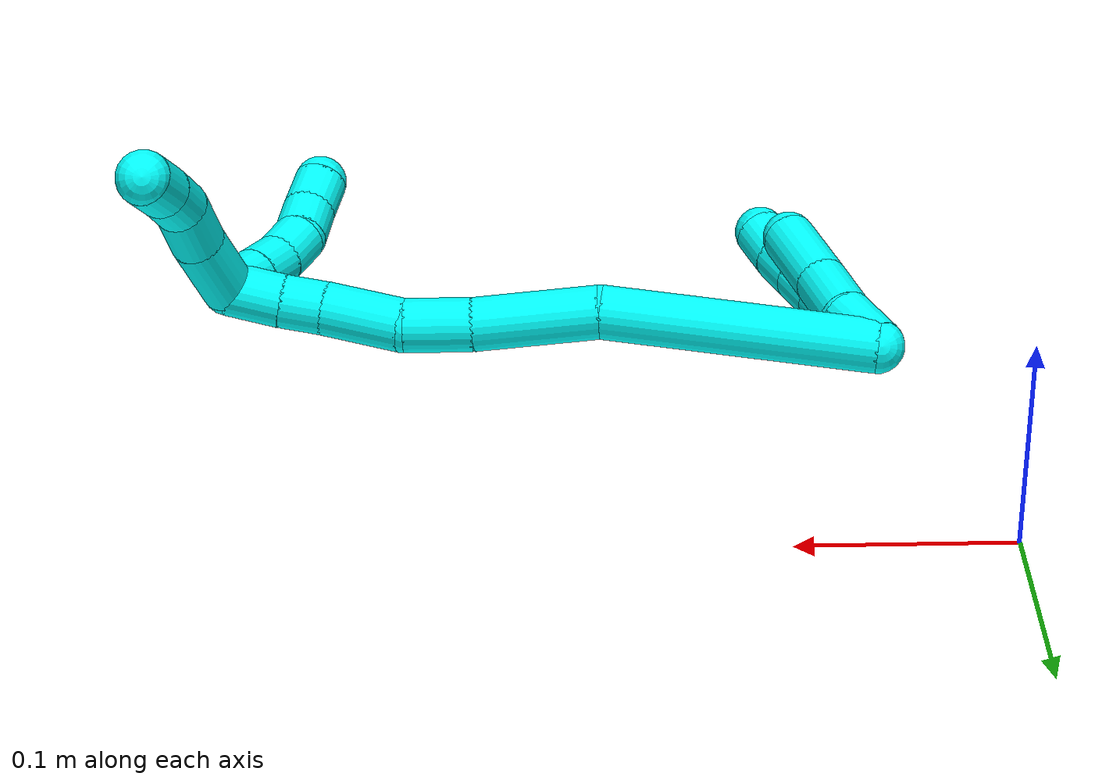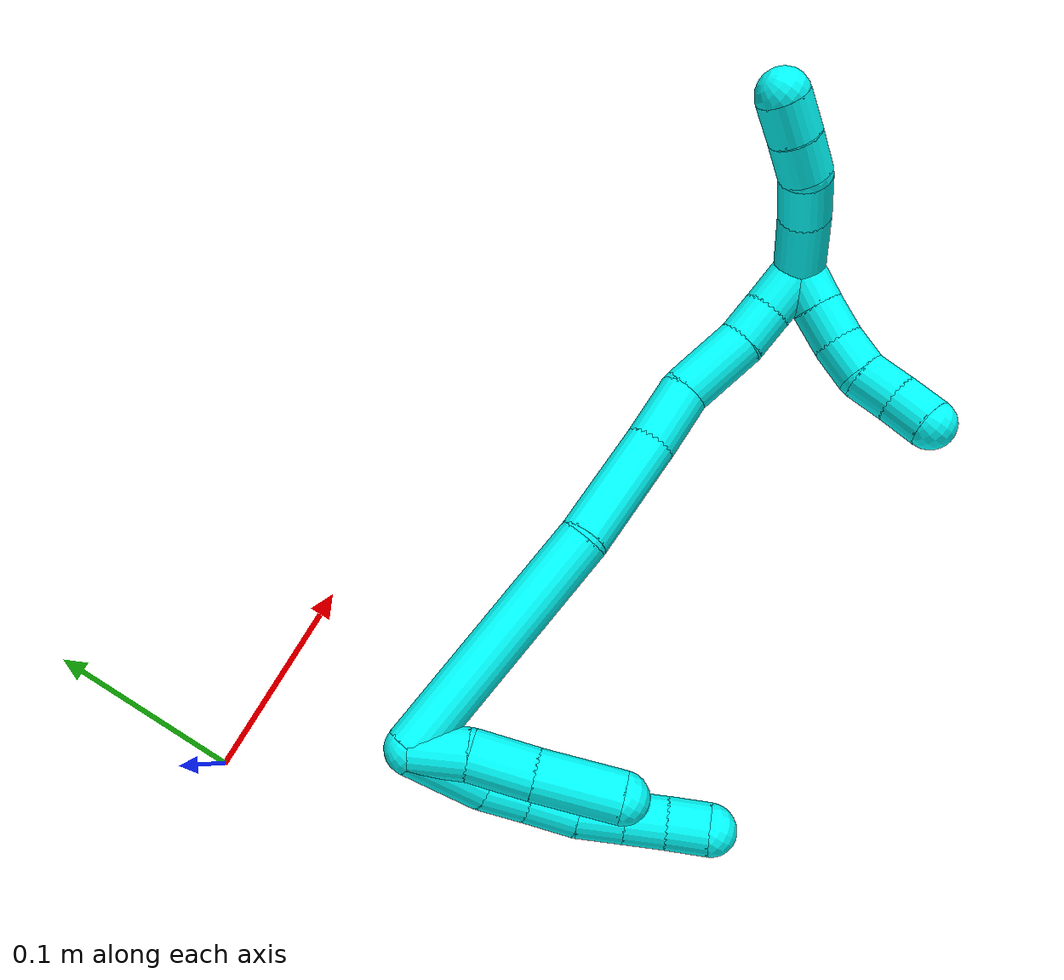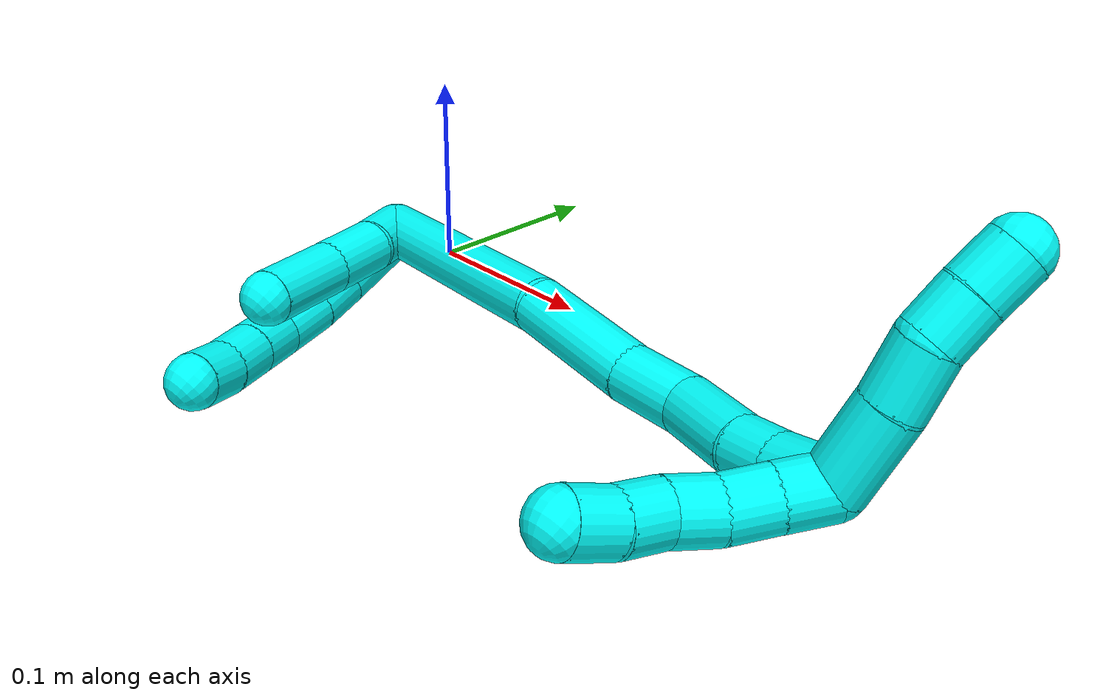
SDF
<sdf version="1.7">
 <world name="default">
  <model name="3">
   <static>0</static>
   <link name="3">
    <collision name="collision-cylinder-e_1_2_8">
     <pose>-0.000813 -0.002277 -0.020034 3.02841 -0.040277 -0.683167</pose>
     <geometry><cylinder><radius>0.0125</radius><length>0.040358</length></cylinder></geometry>
     <surface>
      <friction><ode><mu>1.16</mu><mu2>1.16</mu2><slip1>0</slip1><slip2>0</slip2></ode></friction>
      <contact><ode><kp>1e+06</kp><kd>1</kd><max_vel>0</max_vel><min_depth>0.001</min_depth></ode></contact>
     </surface>
    </collision>
    <visual name="visual-cylinder-e_1_2_8">
     <pose>-0.000813 -0.002277 -0.020034 3.02841 -0.040277 -0.683167</pose>
     <geometry><cylinder><radius>0.0125</radius><length>0.040358</length></cylinder></geometry>
     <material><ambient>0.003922 1 0.996078 1</ambient></material>
    </visual>
    <collision name="collision-cylinder-e_2_8_9">
     <pose>-0.001978 -0.008486 -0.050464 2.78004 -0.031706 -0.173052</pose>
     <geometry><cylinder><radius>0.0125</radius><length>0.022242</length></cylinder></geometry>
     <surface>
      <friction><ode><mu>1.16</mu><mu2>1.16</mu2><slip1>0</slip1><slip2>0</slip2></ode></friction>
      <contact><ode><kp>1e+06</kp><kd>1</kd><max_vel>0</max_vel><min_depth>0.001</min_depth></ode></contact>
     </surface>
    </collision>
    <visual name="visual-cylinder-e_2_8_9">
     <pose>-0.001978 -0.008486 -0.050464 2.78004 -0.031706 -0.173052</pose>
     <geometry><cylinder><radius>0.0125</radius><length>0.022242</length></cylinder></geometry>
     <material><ambient>0.003922 1 0.996078 1</ambient></material>
    </visual>
    <collision name="collision-cylinder-e_3_9_10">
     <pose>-0.003651 -0.017693 -0.072028 2.7003 -0.106576 -0.466935</pose>
     <geometry><cylinder><radius>0.0125</radius><length>0.024841</length></cylinder></geometry>
     <surface>
      <friction><ode><mu>1.16</mu><mu2>1.16</mu2><slip1>0</slip1><slip2>0</slip2></ode></friction>
      <contact><ode><kp>1e+06</kp><kd>1</kd><max_vel>0</max_vel><min_depth>0.001</min_depth></ode></contact>
     </surface>
    </collision>
    <visual name="visual-cylinder-e_3_9_10">
     <pose>-0.003651 -0.017693 -0.072028 2.7003 -0.106576 -0.466935</pose>
     <geometry><cylinder><radius>0.0125</radius><length>0.024841</length></cylinder></geometry>
     <material><ambient>0.003922 1 0.996078 1</ambient></material>
    </visual>
    <collision name="collision-cylinder-e_4_10_11">
     <pose>-0.005686 -0.029761 -0.091878 2.47772 -0.064641 -0.187054</pose>
     <geometry><cylinder><radius>0.0125</radius><length>0.022095</length></cylinder></geometry>
     <surface>
      <friction><ode><mu>1.16</mu><mu2>1.16</mu2><slip1>0</slip1><slip2>0</slip2></ode></friction>
      <contact><ode><kp>1e+06</kp><kd>1</kd><max_vel>0</max_vel><min_depth>0.001</min_depth></ode></contact>
     </surface>
    </collision>
    <visual name="visual-cylinder-e_4_10_11">
     <pose>-0.005686 -0.029761 -0.091878 2.47772 -0.064641 -0.187054</pose>
     <geometry><cylinder><radius>0.0125</radius><length>0.022095</length></cylinder></geometry>
     <material><ambient>0.003922 1 0.996078 1</ambient></material>
    </visual>
    <collision name="collision-cylinder-e_5_11_12">
     <pose>-0.007047 -0.042751 -0.10853 2.48063 -0.063994 -0.186064</pose>
     <geometry><cylinder><radius>0.0125</radius><length>0.020231</length></cylinder></geometry>
     <surface>
      <friction><ode><mu>1.16</mu><mu2>1.16</mu2><slip1>0</slip1><slip2>0</slip2></ode></friction>
      <contact><ode><kp>1e+06</kp><kd>1</kd><max_vel>0</max_vel><min_depth>0.001</min_depth></ode></contact>
     </surface>
    </collision>
    <visual name="visual-cylinder-e_5_11_12">
     <pose>-0.007047 -0.042751 -0.10853 2.48063 -0.063994 -0.186064</pose>
     <geometry><cylinder><radius>0.0125</radius><length>0.020231</length></cylinder></geometry>
     <material><ambient>0.003922 1 0.996078 1</ambient></material>
    </visual>
    <collision name="collision-cylinder-e_6_12_6">
     <pose>-0.00924 -0.05582 -0.123759 2.38361 -0.153485 -0.381471</pose>
     <geometry><cylinder><radius>0.0125</radius><length>0.020232</length></cylinder></geometry>
     <surface>
      <friction><ode><mu>1.16</mu><mu2>1.16</mu2><slip1>0</slip1><slip2>0</slip2></ode></friction>
      <contact><ode><kp>1e+06</kp><kd>1</kd><max_vel>0</max_vel><min_depth>0.001</min_depth></ode></contact>
     </surface>
    </collision>
    <visual name="visual-cylinder-e_6_12_6">
     <pose>-0.00924 -0.05582 -0.123759 2.38361 -0.153485 -0.381471</pose>
     <geometry><cylinder><radius>0.0125</radius><length>0.020232</length></cylinder></geometry>
     <material><ambient>0.003922 1 0.996078 1</ambient></material>
    </visual>
    <collision name="collision-cylinder-e_1_2_13">
     <pose>-0.000728 -0.008754 -0.0106 2.45125 -0.05292 -0.146947</pose>
     <geometry><cylinder><radius>0.0125</radius><length>0.027533</length></cylinder></geometry>
     <surface>
      <friction><ode><mu>1.16</mu><mu2>1.16</mu2><slip1>0</slip1><slip2>0</slip2></ode></friction>
      <contact><ode><kp>1e+06</kp><kd>1</kd><max_vel>0</max_vel><min_depth>0.001</min_depth></ode></contact>
     </surface>
    </collision>
    <visual name="visual-cylinder-e_1_2_13">
     <pose>-0.000728 -0.008754 -0.0106 2.45125 -0.05292 -0.146947</pose>
     <geometry><cylinder><radius>0.0125</radius><length>0.027533</length></cylinder></geometry>
     <material><ambient>0.003922 1 0.996078 1</ambient></material>
    </visual>
    <collision name="collision-cylinder-e_2_13_14">
     <pose>-0.004161 -0.025304 -0.034446 2.60974 -0.174167 -0.620358</pose>
     <geometry><cylinder><radius>0.0125</radius><length>0.031213</length></cylinder></geometry>
     <surface>
      <friction><ode><mu>1.16</mu><mu2>1.16</mu2><slip1>0</slip1><slip2>0</slip2></ode></friction>
      <contact><ode><kp>1e+06</kp><kd>1</kd><max_vel>0</max_vel><min_depth>0.001</min_depth></ode></contact>
     </surface>
    </collision>
    <visual name="visual-cylinder-e_2_13_14">
     <pose>-0.004161 -0.025304 -0.034446 2.60974 -0.174167 -0.620358</pose>
     <geometry><cylinder><radius>0.0125</radius><length>0.031213</length></cylinder></geometry>
     <material><ambient>0.003922 1 0.996078 1</ambient></material>
    </visual>
    <collision name="collision-cylinder-e_3_14_5">
     <pose>-0.010288 -0.044346 -0.064642 2.55568 -0.166721 -0.540456</pose>
     <geometry><cylinder><radius>0.0125</radius><length>0.041254</length></cylinder></geometry>
     <surface>
      <friction><ode><mu>1.16</mu><mu2>1.16</mu2><slip1>0</slip1><slip2>0</slip2></ode></friction>
      <contact><ode><kp>1e+06</kp><kd>1</kd><max_vel>0</max_vel><min_depth>0.001</min_depth></ode></contact>
     </surface>
    </collision>
    <visual name="visual-cylinder-e_3_14_5">
     <pose>-0.010288 -0.044346 -0.064642 2.55568 -0.166721 -0.540456</pose>
     <geometry><cylinder><radius>0.0125</radius><length>0.041254</length></cylinder></geometry>
     <material><ambient>0.003922 1 0.996078 1</ambient></material>
    </visual>
    <collision name="collision-cylinder-e_1_2_15">
     <pose>0.039145 -0.048917 -0.008796 1.74871 0.667136 0.785689</pose>
     <geometry><cylinder><radius>0.0125</radius><length>0.126532</length></cylinder></geometry>
     <surface>
      <friction><ode><mu>1.16</mu><mu2>1.16</mu2><slip1>0</slip1><slip2>0</slip2></ode></friction>
      <contact><ode><kp>1e+06</kp><kd>1</kd><max_vel>0</max_vel><min_depth>0.001</min_depth></ode></contact>
     </surface>
    </collision>
    <visual name="visual-cylinder-e_1_2_15">
     <pose>0.039145 -0.048917 -0.008796 1.74871 0.667136 0.785689</pose>
     <geometry><cylinder><radius>0.0125</radius><length>0.126532</length></cylinder></geometry>
     <material><ambient>0.003922 1 0.996078 1</ambient></material>
    </visual>
    <collision name="collision-cylinder-e_2_15_16">
     <pose>0.100924 -0.115841 -0.02251 1.8374 0.881183 1.10643</pose>
     <geometry><cylinder><radius>0.0125</radius><length>0.058676</length></cylinder></geometry>
     <surface>
      <friction><ode><mu>1.16</mu><mu2>1.16</mu2><slip1>0</slip1><slip2>0</slip2></ode></friction>
      <contact><ode><kp>1e+06</kp><kd>1</kd><max_vel>0</max_vel><min_depth>0.001</min_depth></ode></contact>
     </surface>
    </collision>
    <visual name="visual-cylinder-e_2_15_16">
     <pose>0.100924 -0.115841 -0.02251 1.8374 0.881183 1.10643</pose>
     <geometry><cylinder><radius>0.0125</radius><length>0.058676</length></cylinder></geometry>
     <material><ambient>0.003922 1 0.996078 1</ambient></material>
    </visual>
    <collision name="collision-cylinder-e_3_16_17">
     <pose>0.13509 -0.144738 -0.028849 1.70059 0.809766 0.908219</pose>
     <geometry><cylinder><radius>0.0125</radius><length>0.031849</length></cylinder></geometry>
     <surface>
      <friction><ode><mu>1.16</mu><mu2>1.16</mu2><slip1>0</slip1><slip2>0</slip2></ode></friction>
      <contact><ode><kp>1e+06</kp><kd>1</kd><max_vel>0</max_vel><min_depth>0.001</min_depth></ode></contact>
     </surface>
    </collision>
    <visual name="visual-cylinder-e_3_16_17">
     <pose>0.13509 -0.144738 -0.028849 1.70059 0.809766 0.908219</pose>
     <geometry><cylinder><radius>0.0125</radius><length>0.031849</length></cylinder></geometry>
     <material><ambient>0.003922 1 0.996078 1</ambient></material>
    </visual>
    <collision name="collision-cylinder-e_4_17_18">
     <pose>0.156615 -0.170746 -0.035292 1.8915 0.560264 0.7588</pose>
     <geometry><cylinder><radius>0.0125</radius><length>0.037609</length></cylinder></geometry>
     <surface>
      <friction><ode><mu>1.16</mu><mu2>1.16</mu2><slip1>0</slip1><slip2>0</slip2></ode></friction>
      <contact><ode><kp>1e+06</kp><kd>1</kd><max_vel>0</max_vel><min_depth>0.001</min_depth></ode></contact>
     </surface>
    </collision>
    <visual name="visual-cylinder-e_4_17_18">
     <pose>0.156615 -0.170746 -0.035292 1.8915 0.560264 0.7588</pose>
     <geometry><cylinder><radius>0.0125</radius><length>0.037609</length></cylinder></geometry>
     <material><ambient>0.003922 1 0.996078 1</ambient></material>
    </visual>
    <collision name="collision-cylinder-e_5_18_19">
     <pose>0.172499 -0.193984 -0.041432 1.70763 0.623184 0.70783</pose>
     <geometry><cylinder><radius>0.0125</radius><length>0.020189</length></cylinder></geometry>
     <surface>
      <friction><ode><mu>1.16</mu><mu2>1.16</mu2><slip1>0</slip1><slip2>0</slip2></ode></friction>
      <contact><ode><kp>1e+06</kp><kd>1</kd><max_vel>0</max_vel><min_depth>0.001</min_depth></ode></contact>
     </surface>
    </collision>
    <visual name="visual-cylinder-e_5_18_19">
     <pose>0.172499 -0.193984 -0.041432 1.70763 0.623184 0.70783</pose>
     <geometry><cylinder><radius>0.0125</radius><length>0.020189</length></cylinder></geometry>
     <material><ambient>0.003922 1 0.996078 1</ambient></material>
    </visual>
    <collision name="collision-cylinder-e_6_19_1">
     <pose>0.185131 -0.212681 -0.043415 1.65244 0.56587 0.611221</pose>
     <geometry><cylinder><radius>0.0125</radius><length>0.025144</length></cylinder></geometry>
     <surface>
      <friction><ode><mu>1.16</mu><mu2>1.16</mu2><slip1>0</slip1><slip2>0</slip2></ode></friction>
      <contact><ode><kp>1e+06</kp><kd>1</kd><max_vel>0</max_vel><min_depth>0.001</min_depth></ode></contact>
     </surface>
    </collision>
    <visual name="visual-cylinder-e_6_19_1">
     <pose>0.185131 -0.212681 -0.043415 1.65244 0.56587 0.611221</pose>
     <geometry><cylinder><radius>0.0125</radius><length>0.025144</length></cylinder></geometry>
     <material><ambient>0.003922 1 0.996078 1</ambient></material>
    </visual>
    <collision name="collision-cylinder-e_1_1_20">
     <pose>0.18563 -0.221585 -0.051913 -2.92579 -0.673983 2.54189</pose>
     <geometry><cylinder><radius>0.0125</radius><length>0.02</length></cylinder></geometry>
     <surface>
      <friction><ode><mu>1.16</mu><mu2>1.16</mu2><slip1>0</slip1><slip2>0</slip2></ode></friction>
      <contact><ode><kp>1e+06</kp><kd>1</kd><max_vel>0</max_vel><min_depth>0.001</min_depth></ode></contact>
     </surface>
    </collision>
    <visual name="visual-cylinder-e_1_1_20">
     <pose>0.18563 -0.221585 -0.051913 -2.92579 -0.673983 2.54189</pose>
     <geometry><cylinder><radius>0.0125</radius><length>0.02</length></cylinder></geometry>
     <material><ambient>0.003922 1 0.996078 1</ambient></material>
    </visual>
    <collision name="collision-cylinder-e_2_20_21">
     <pose>0.173198 -0.218679 -0.067301 -2.98393 -0.667587 2.69364</pose>
     <geometry><cylinder><radius>0.0125</radius><length>0.02</length></cylinder></geometry>
     <surface>
      <friction><ode><mu>1.16</mu><mu2>1.16</mu2><slip1>0</slip1><slip2>0</slip2></ode></friction>
      <contact><ode><kp>1e+06</kp><kd>1</kd><max_vel>0</max_vel><min_depth>0.001</min_depth></ode></contact>
     </surface>
    </collision>
    <visual name="visual-cylinder-e_2_20_21">
     <pose>0.173198 -0.218679 -0.067301 -2.98393 -0.667587 2.69364</pose>
     <geometry><cylinder><radius>0.0125</radius><length>0.02</length></cylinder></geometry>
     <material><ambient>0.003922 1 0.996078 1</ambient></material>
    </visual>
    <collision name="collision-cylinder-e_3_21_22">
     <pose>0.159677 -0.217773 -0.081851 3.09345 -0.822719 -3.03132</pose>
     <geometry><cylinder><radius>0.0125</radius><length>0.02</length></cylinder></geometry>
     <surface>
      <friction><ode><mu>1.16</mu><mu2>1.16</mu2><slip1>0</slip1><slip2>0</slip2></ode></friction>
      <contact><ode><kp>1e+06</kp><kd>1</kd><max_vel>0</max_vel><min_depth>0.001</min_depth></ode></contact>
     </surface>
    </collision>
    <visual name="visual-cylinder-e_3_21_22">
     <pose>0.159677 -0.217773 -0.081851 3.09345 -0.822719 -3.03132</pose>
     <geometry><cylinder><radius>0.0125</radius><length>0.02</length></cylinder></geometry>
     <material><ambient>0.003922 1 0.996078 1</ambient></material>
    </visual>
    <collision name="collision-cylinder-e_4_22_23">
     <pose>0.146583 -0.221103 -0.096245 2.76536 -0.614413 -2.06067</pose>
     <geometry><cylinder><radius>0.0125</radius><length>0.02</length></cylinder></geometry>
     <surface>
      <friction><ode><mu>1.16</mu><mu2>1.16</mu2><slip1>0</slip1><slip2>0</slip2></ode></friction>
      <contact><ode><kp>1e+06</kp><kd>1</kd><max_vel>0</max_vel><min_depth>0.001</min_depth></ode></contact>
     </surface>
    </collision>
    <visual name="visual-cylinder-e_4_22_23">
     <pose>0.146583 -0.221103 -0.096245 2.76536 -0.614413 -2.06067</pose>
     <geometry><cylinder><radius>0.0125</radius><length>0.02</length></cylinder></geometry>
     <material><ambient>0.003922 1 0.996078 1</ambient></material>
    </visual>
    <collision name="collision-cylinder-e_5_23_4">
     <pose>0.133797 -0.227266 -0.110226 2.68165 -0.778243 -2.10399</pose>
     <geometry><cylinder><radius>0.0125</radius><length>0.02</length></cylinder></geometry>
     <surface>
      <friction><ode><mu>1.16</mu><mu2>1.16</mu2><slip1>0</slip1><slip2>0</slip2></ode></friction>
      <contact><ode><kp>1e+06</kp><kd>1</kd><max_vel>0</max_vel><min_depth>0.001</min_depth></ode></contact>
     </surface>
    </collision>
    <visual name="visual-cylinder-e_5_23_4">
     <pose>0.133797 -0.227266 -0.110226 2.68165 -0.778243 -2.10399</pose>
     <geometry><cylinder><radius>0.0125</radius><length>0.02</length></cylinder></geometry>
     <material><ambient>0.003922 1 0.996078 1</ambient></material>
    </visual>
    <collision name="collision-cylinder-e_1_1_24">
     <pose>0.189065 -0.235365 -0.031859 0.772587 -0.160373 -0.065345</pose>
     <geometry><cylinder><radius>0.0125</radius><length>0.035143</length></cylinder></geometry>
     <surface>
      <friction><ode><mu>1.16</mu><mu2>1.16</mu2><slip1>0</slip1><slip2>0</slip2></ode></friction>
      <contact><ode><kp>1e+06</kp><kd>1</kd><max_vel>0</max_vel><min_depth>0.001</min_depth></ode></contact>
     </surface>
    </collision>
    <visual name="visual-cylinder-e_1_1_24">
     <pose>0.189065 -0.235365 -0.031859 0.772587 -0.160373 -0.065345</pose>
     <geometry><cylinder><radius>0.0125</radius><length>0.035143</length></cylinder></geometry>
     <material><ambient>0.003922 1 0.996078 1</ambient></material>
    </visual>
    <collision name="collision-cylinder-e_2_24_25">
     <pose>0.183295 -0.255256 -0.010279 0.704429 -0.241843 -0.089264</pose>
     <geometry><cylinder><radius>0.0125</radius><length>0.024758</length></cylinder></geometry>
     <surface>
      <friction><ode><mu>1.16</mu><mu2>1.16</mu2><slip1>0</slip1><slip2>0</slip2></ode></friction>
      <contact><ode><kp>1e+06</kp><kd>1</kd><max_vel>0</max_vel><min_depth>0.001</min_depth></ode></contact>
     </surface>
    </collision>
    <visual name="visual-cylinder-e_2_24_25">
     <pose>0.183295 -0.255256 -0.010279 0.704429 -0.241843 -0.089264</pose>
     <geometry><cylinder><radius>0.0125</radius><length>0.024758</length></cylinder></geometry>
     <material><ambient>0.003922 1 0.996078 1</ambient></material>
    </visual>
    <collision name="collision-cylinder-e_3_25_26">
     <pose>0.180428 -0.267752 0.007727 0.489414 0.009742 0.002433</pose>
     <geometry><cylinder><radius>0.0125</radius><length>0.020052</length></cylinder></geometry>
     <surface>
      <friction><ode><mu>1.16</mu><mu2>1.16</mu2><slip1>0</slip1><slip2>0</slip2></ode></friction>
      <contact><ode><kp>1e+06</kp><kd>1</kd><max_vel>0</max_vel><min_depth>0.001</min_depth></ode></contact>
     </surface>
    </collision>
    <visual name="visual-cylinder-e_3_25_26">
     <pose>0.180428 -0.267752 0.007727 0.489414 0.009742 0.002433</pose>
     <geometry><cylinder><radius>0.0125</radius><length>0.020052</length></cylinder></geometry>
     <material><ambient>0.003922 1 0.996078 1</ambient></material>
    </visual>
    <collision name="collision-cylinder-e_4_26_3">
     <pose>0.181253 -0.276913 0.025529 0.461122 0.072708 0.017074</pose>
     <geometry><cylinder><radius>0.0125</radius><length>0.020047</length></cylinder></geometry>
     <surface>
      <friction><ode><mu>1.16</mu><mu2>1.16</mu2><slip1>0</slip1><slip2>0</slip2></ode></friction>
      <contact><ode><kp>1e+06</kp><kd>1</kd><max_vel>0</max_vel><min_depth>0.001</min_depth></ode></contact>
     </surface>
    </collision>
    <visual name="visual-cylinder-e_4_26_3">
     <pose>0.181253 -0.276913 0.025529 0.461122 0.072708 0.017074</pose>
     <geometry><cylinder><radius>0.0125</radius><length>0.020047</length></cylinder></geometry>
     <material><ambient>0.003922 1 0.996078 1</ambient></material>
    </visual>
    <collision name="collision-sphere-3">
     <pose>0.181982 -0.281362 0.034482 0 -0 0</pose>
     <geometry><sphere><radius>0.0125</radius></sphere></geometry>
     <surface>
      <friction><ode><mu>1.16</mu><mu2>1.16</mu2><slip1>0</slip1><slip2>0</slip2></ode></friction>
      <contact><ode><kp>1e+06</kp><kd>1</kd><max_vel>0</max_vel><min_depth>0.001</min_depth></ode></contact>
     </surface>
    </collision>
    <visual name="visual-sphere-3">
     <pose>0.181982 -0.281362 0.034482 0 -0 0</pose>
     <geometry><sphere><radius>0.0125</radius></sphere></geometry>
     <material><ambient>0.003922 1 0.996078 1</ambient></material>
    </visual>
    <collision name="collision-sphere-26">
     <pose>0.180525 -0.272465 0.016576 0 -0 0</pose>
     <geometry><sphere><radius>0.0125</radius></sphere></geometry>
     <surface>
      <friction><ode><mu>1.16</mu><mu2>1.16</mu2><slip1>0</slip1><slip2>0</slip2></ode></friction>
      <contact><ode><kp>1e+06</kp><kd>1</kd><max_vel>0</max_vel><min_depth>0.001</min_depth></ode></contact>
     </surface>
    </collision>
    <visual name="visual-sphere-26">
     <pose>0.180525 -0.272465 0.016576 0 -0 0</pose>
     <geometry><sphere><radius>0.0125</radius></sphere></geometry>
     <material><ambient>0.003922 1 0.996078 1</ambient></material>
    </visual>
    <collision name="collision-sphere-25">
     <pose>0.18033 -0.263039 -0.001121 0 -0 0</pose>
     <geometry><sphere><radius>0.0125</radius></sphere></geometry>
     <surface>
      <friction><ode><mu>1.16</mu><mu2>1.16</mu2><slip1>0</slip1><slip2>0</slip2></ode></friction>
      <contact><ode><kp>1e+06</kp><kd>1</kd><max_vel>0</max_vel><min_depth>0.001</min_depth></ode></contact>
     </surface>
    </collision>
    <visual name="visual-sphere-25">
     <pose>0.18033 -0.263039 -0.001121 0 -0 0</pose>
     <geometry><sphere><radius>0.0125</radius></sphere></geometry>
     <material><ambient>0.003922 1 0.996078 1</ambient></material>
    </visual>
    <collision name="collision-sphere-24">
     <pose>0.186259 -0.247472 -0.019438 0 -0 0</pose>
     <geometry><sphere><radius>0.0125</radius></sphere></geometry>
     <surface>
      <friction><ode><mu>1.16</mu><mu2>1.16</mu2><slip1>0</slip1><slip2>0</slip2></ode></friction>
      <contact><ode><kp>1e+06</kp><kd>1</kd><max_vel>0</max_vel><min_depth>0.001</min_depth></ode></contact>
     </surface>
    </collision>
    <visual name="visual-sphere-24">
     <pose>0.186259 -0.247472 -0.019438 0 -0 0</pose>
     <geometry><sphere><radius>0.0125</radius></sphere></geometry>
     <material><ambient>0.003922 1 0.996078 1</ambient></material>
    </visual>
    <collision name="collision-sphere-4">
     <pose>0.126777 -0.230427 -0.116607 0 -0 0</pose>
     <geometry><sphere><radius>0.0125</radius></sphere></geometry>
     <surface>
      <friction><ode><mu>1.16</mu><mu2>1.16</mu2><slip1>0</slip1><slip2>0</slip2></ode></friction>
      <contact><ode><kp>1e+06</kp><kd>1</kd><max_vel>0</max_vel><min_depth>0.001</min_depth></ode></contact>
     </surface>
    </collision>
    <visual name="visual-sphere-4">
     <pose>0.126777 -0.230427 -0.116607 0 -0 0</pose>
     <geometry><sphere><radius>0.0125</radius></sphere></geometry>
     <material><ambient>0.003922 1 0.996078 1</ambient></material>
    </visual>
    <collision name="collision-sphere-23">
     <pose>0.140818 -0.224105 -0.103845 0 -0 0</pose>
     <geometry><sphere><radius>0.0125</radius></sphere></geometry>
     <surface>
      <friction><ode><mu>1.16</mu><mu2>1.16</mu2><slip1>0</slip1><slip2>0</slip2></ode></friction>
      <contact><ode><kp>1e+06</kp><kd>1</kd><max_vel>0</max_vel><min_depth>0.001</min_depth></ode></contact>
     </surface>
    </collision>
    <visual name="visual-sphere-23">
     <pose>0.140818 -0.224105 -0.103845 0 -0 0</pose>
     <geometry><sphere><radius>0.0125</radius></sphere></geometry>
     <material><ambient>0.003922 1 0.996078 1</ambient></material>
    </visual>
    <collision name="collision-sphere-22">
     <pose>0.152347 -0.2181 -0.088645 0 -0 0</pose>
     <geometry><sphere><radius>0.0125</radius></sphere></geometry>
     <surface>
      <friction><ode><mu>1.16</mu><mu2>1.16</mu2><slip1>0</slip1><slip2>0</slip2></ode></friction>
      <contact><ode><kp>1e+06</kp><kd>1</kd><max_vel>0</max_vel><min_depth>0.001</min_depth></ode></contact>
     </surface>
    </collision>
    <visual name="visual-sphere-22">
     <pose>0.152347 -0.2181 -0.088645 0 -0 0</pose>
     <geometry><sphere><radius>0.0125</radius></sphere></geometry>
     <material><ambient>0.003922 1 0.996078 1</ambient></material>
    </visual>
    <collision name="collision-sphere-21">
     <pose>0.167007 -0.217446 -0.075057 0 -0 0</pose>
     <geometry><sphere><radius>0.0125</radius></sphere></geometry>
     <surface>
      <friction><ode><mu>1.16</mu><mu2>1.16</mu2><slip1>0</slip1><slip2>0</slip2></ode></friction>
      <contact><ode><kp>1e+06</kp><kd>1</kd><max_vel>0</max_vel><min_depth>0.001</min_depth></ode></contact>
     </surface>
    </collision>
    <visual name="visual-sphere-21">
     <pose>0.167007 -0.217446 -0.075057 0 -0 0</pose>
     <geometry><sphere><radius>0.0125</radius></sphere></geometry>
     <material><ambient>0.003922 1 0.996078 1</ambient></material>
    </visual>
    <collision name="collision-sphere-20">
     <pose>0.179389 -0.219912 -0.059545 0 -0 0</pose>
     <geometry><sphere><radius>0.0125</radius></sphere></geometry>
     <surface>
      <friction><ode><mu>1.16</mu><mu2>1.16</mu2><slip1>0</slip1><slip2>0</slip2></ode></friction>
      <contact><ode><kp>1e+06</kp><kd>1</kd><max_vel>0</max_vel><min_depth>0.001</min_depth></ode></contact>
     </surface>
    </collision>
    <visual name="visual-sphere-20">
     <pose>0.179389 -0.219912 -0.059545 0 -0 0</pose>
     <geometry><sphere><radius>0.0125</radius></sphere></geometry>
     <material><ambient>0.003922 1 0.996078 1</ambient></material>
    </visual>
    <collision name="collision-sphere-12">
     <pose>-0.007694 -0.048948 -0.116499 0 -0 0</pose>
     <geometry><sphere><radius>0.0125</radius></sphere></geometry>
     <surface>
      <friction><ode><mu>1.16</mu><mu2>1.16</mu2><slip1>0</slip1><slip2>0</slip2></ode></friction>
      <contact><ode><kp>1e+06</kp><kd>1</kd><max_vel>0</max_vel><min_depth>0.001</min_depth></ode></contact>
     </surface>
    </collision>
    <visual name="visual-sphere-12">
     <pose>-0.007694 -0.048948 -0.116499 0 -0 0</pose>
     <geometry><sphere><radius>0.0125</radius></sphere></geometry>
     <material><ambient>0.003922 1 0.996078 1</ambient></material>
    </visual>
    <collision name="collision-sphere-11">
     <pose>-0.0064 -0.036553 -0.100561 0 -0 0</pose>
     <geometry><sphere><radius>0.0125</radius></sphere></geometry>
     <surface>
      <friction><ode><mu>1.16</mu><mu2>1.16</mu2><slip1>0</slip1><slip2>0</slip2></ode></friction>
      <contact><ode><kp>1e+06</kp><kd>1</kd><max_vel>0</max_vel><min_depth>0.001</min_depth></ode></contact>
     </surface>
    </collision>
    <visual name="visual-sphere-11">
     <pose>-0.0064 -0.036553 -0.100561 0 -0 0</pose>
     <geometry><sphere><radius>0.0125</radius></sphere></geometry>
     <material><ambient>0.003922 1 0.996078 1</ambient></material>
    </visual>
    <collision name="collision-sphere-10">
     <pose>-0.004973 -0.022968 -0.083195 0 -0 0</pose>
     <geometry><sphere><radius>0.0125</radius></sphere></geometry>
     <surface>
      <friction><ode><mu>1.16</mu><mu2>1.16</mu2><slip1>0</slip1><slip2>0</slip2></ode></friction>
      <contact><ode><kp>1e+06</kp><kd>1</kd><max_vel>0</max_vel><min_depth>0.001</min_depth></ode></contact>
     </surface>
    </collision>
    <visual name="visual-sphere-10">
     <pose>-0.004973 -0.022968 -0.083195 0 -0 0</pose>
     <geometry><sphere><radius>0.0125</radius></sphere></geometry>
     <material><ambient>0.003922 1 0.996078 1</ambient></material>
    </visual>
    <collision name="collision-sphere-9">
     <pose>-0.00233 -0.012418 -0.060861 0 -0 0</pose>
     <geometry><sphere><radius>0.0125</radius></sphere></geometry>
     <surface>
      <friction><ode><mu>1.16</mu><mu2>1.16</mu2><slip1>0</slip1><slip2>0</slip2></ode></friction>
      <contact><ode><kp>1e+06</kp><kd>1</kd><max_vel>0</max_vel><min_depth>0.001</min_depth></ode></contact>
     </surface>
    </collision>
    <visual name="visual-sphere-9">
     <pose>-0.00233 -0.012418 -0.060861 0 -0 0</pose>
     <geometry><sphere><radius>0.0125</radius></sphere></geometry>
     <material><ambient>0.003922 1 0.996078 1</ambient></material>
    </visual>
    <collision name="collision-sphere-2">
     <geometry><sphere><radius>0.0125</radius></sphere></geometry>
     <surface>
      <friction><ode><mu>1.16</mu><mu2>1.16</mu2><slip1>0</slip1><slip2>0</slip2></ode></friction>
      <contact><ode><kp>1e+06</kp><kd>1</kd><max_vel>0</max_vel><min_depth>0.001</min_depth></ode></contact>
     </surface>
    </collision>
    <visual name="visual-sphere-2">
     <geometry><sphere><radius>0.0125</radius></sphere></geometry>
     <material><ambient>0.003922 1 0.996078 1</ambient></material>
    </visual>
    <collision name="collision-sphere-19">
     <pose>0.17839 -0.202104 -0.04255 0 -0 0</pose>
     <geometry><sphere><radius>0.0125</radius></sphere></geometry>
     <surface>
      <friction><ode><mu>1.16</mu><mu2>1.16</mu2><slip1>0</slip1><slip2>0</slip2></ode></friction>
      <contact><ode><kp>1e+06</kp><kd>1</kd><max_vel>0</max_vel><min_depth>0.001</min_depth></ode></contact>
     </surface>
    </collision>
    <visual name="visual-sphere-19">
     <pose>0.17839 -0.202104 -0.04255 0 -0 0</pose>
     <geometry><sphere><radius>0.0125</radius></sphere></geometry>
     <material><ambient>0.003922 1 0.996078 1</ambient></material>
    </visual>
    <collision name="collision-sphere-8">
     <pose>-0.001625 -0.004554 -0.040067 0 -0 0</pose>
     <geometry><sphere><radius>0.0125</radius></sphere></geometry>
     <surface>
      <friction><ode><mu>1.16</mu><mu2>1.16</mu2><slip1>0</slip1><slip2>0</slip2></ode></friction>
      <contact><ode><kp>1e+06</kp><kd>1</kd><max_vel>0</max_vel><min_depth>0.001</min_depth></ode></contact>
     </surface>
    </collision>
    <visual name="visual-sphere-8">
     <pose>-0.001625 -0.004554 -0.040067 0 -0 0</pose>
     <geometry><sphere><radius>0.0125</radius></sphere></geometry>
     <material><ambient>0.003922 1 0.996078 1</ambient></material>
    </visual>
    <collision name="collision-sphere-6">
     <pose>-0.010787 -0.062693 -0.131019 0 -0 0</pose>
     <geometry><sphere><radius>0.0125</radius></sphere></geometry>
     <surface>
      <friction><ode><mu>1.16</mu><mu2>1.16</mu2><slip1>0</slip1><slip2>0</slip2></ode></friction>
      <contact><ode><kp>1e+06</kp><kd>1</kd><max_vel>0</max_vel><min_depth>0.001</min_depth></ode></contact>
     </surface>
    </collision>
    <visual name="visual-sphere-6">
     <pose>-0.010787 -0.062693 -0.131019 0 -0 0</pose>
     <geometry><sphere><radius>0.0125</radius></sphere></geometry>
     <material><ambient>0.003922 1 0.996078 1</ambient></material>
    </visual>
    <collision name="collision-sphere-13">
     <pose>-0.001456 -0.017509 -0.021199 0 -0 0</pose>
     <geometry><sphere><radius>0.0125</radius></sphere></geometry>
     <surface>
      <friction><ode><mu>1.16</mu><mu2>1.16</mu2><slip1>0</slip1><slip2>0</slip2></ode></friction>
      <contact><ode><kp>1e+06</kp><kd>1</kd><max_vel>0</max_vel><min_depth>0.001</min_depth></ode></contact>
     </surface>
    </collision>
    <visual name="visual-sphere-13">
     <pose>-0.001456 -0.017509 -0.021199 0 -0 0</pose>
     <geometry><sphere><radius>0.0125</radius></sphere></geometry>
     <material><ambient>0.003922 1 0.996078 1</ambient></material>
    </visual>
    <collision name="collision-sphere-14">
     <pose>-0.006865 -0.033098 -0.047694 0 -0 0</pose>
     <geometry><sphere><radius>0.0125</radius></sphere></geometry>
     <surface>
      <friction><ode><mu>1.16</mu><mu2>1.16</mu2><slip1>0</slip1><slip2>0</slip2></ode></friction>
      <contact><ode><kp>1e+06</kp><kd>1</kd><max_vel>0</max_vel><min_depth>0.001</min_depth></ode></contact>
     </surface>
    </collision>
    <visual name="visual-sphere-14">
     <pose>-0.006865 -0.033098 -0.047694 0 -0 0</pose>
     <geometry><sphere><radius>0.0125</radius></sphere></geometry>
     <material><ambient>0.003922 1 0.996078 1</ambient></material>
    </visual>
    <collision name="collision-sphere-5">
     <pose>-0.013711 -0.055594 -0.08159 0 -0 0</pose>
     <geometry><sphere><radius>0.0125</radius></sphere></geometry>
     <surface>
      <friction><ode><mu>1.16</mu><mu2>1.16</mu2><slip1>0</slip1><slip2>0</slip2></ode></friction>
      <contact><ode><kp>1e+06</kp><kd>1</kd><max_vel>0</max_vel><min_depth>0.001</min_depth></ode></contact>
     </surface>
    </collision>
    <visual name="visual-sphere-5">
     <pose>-0.013711 -0.055594 -0.08159 0 -0 0</pose>
     <geometry><sphere><radius>0.0125</radius></sphere></geometry>
     <material><ambient>0.003922 1 0.996078 1</ambient></material>
    </visual>
    <collision name="collision-sphere-15">
     <pose>0.07829 -0.097834 -0.017592 0 -0 0</pose>
     <geometry><sphere><radius>0.0125</radius></sphere></geometry>
     <surface>
      <friction><ode><mu>1.16</mu><mu2>1.16</mu2><slip1>0</slip1><slip2>0</slip2></ode></friction>
      <contact><ode><kp>1e+06</kp><kd>1</kd><max_vel>0</max_vel><min_depth>0.001</min_depth></ode></contact>
     </surface>
    </collision>
    <visual name="visual-sphere-15">
     <pose>0.07829 -0.097834 -0.017592 0 -0 0</pose>
     <geometry><sphere><radius>0.0125</radius></sphere></geometry>
     <material><ambient>0.003922 1 0.996078 1</ambient></material>
    </visual>
    <collision name="collision-sphere-16">
     <pose>0.123559 -0.133847 -0.027428 0 -0 0</pose>
     <geometry><sphere><radius>0.0125</radius></sphere></geometry>
     <surface>
      <friction><ode><mu>1.16</mu><mu2>1.16</mu2><slip1>0</slip1><slip2>0</slip2></ode></friction>
      <contact><ode><kp>1e+06</kp><kd>1</kd><max_vel>0</max_vel><min_depth>0.001</min_depth></ode></contact>
     </surface>
    </collision>
    <visual name="visual-sphere-16">
     <pose>0.123559 -0.133847 -0.027428 0 -0 0</pose>
     <geometry><sphere><radius>0.0125</radius></sphere></geometry>
     <material><ambient>0.003922 1 0.996078 1</ambient></material>
    </visual>
    <collision name="collision-sphere-17">
     <pose>0.146621 -0.155628 -0.03027 0 -0 0</pose>
     <geometry><sphere><radius>0.0125</radius></sphere></geometry>
     <surface>
      <friction><ode><mu>1.16</mu><mu2>1.16</mu2><slip1>0</slip1><slip2>0</slip2></ode></friction>
      <contact><ode><kp>1e+06</kp><kd>1</kd><max_vel>0</max_vel><min_depth>0.001</min_depth></ode></contact>
     </surface>
    </collision>
    <visual name="visual-sphere-17">
     <pose>0.146621 -0.155628 -0.03027 0 -0 0</pose>
     <geometry><sphere><radius>0.0125</radius></sphere></geometry>
     <material><ambient>0.003922 1 0.996078 1</ambient></material>
    </visual>
    <collision name="collision-sphere-18">
     <pose>0.166608 -0.185863 -0.040314 0 -0 0</pose>
     <geometry><sphere><radius>0.0125</radius></sphere></geometry>
     <surface>
      <friction><ode><mu>1.16</mu><mu2>1.16</mu2><slip1>0</slip1><slip2>0</slip2></ode></friction>
      <contact><ode><kp>1e+06</kp><kd>1</kd><max_vel>0</max_vel><min_depth>0.001</min_depth></ode></contact>
     </surface>
    </collision>
    <visual name="visual-sphere-18">
     <pose>0.166608 -0.185863 -0.040314 0 -0 0</pose>
     <geometry><sphere><radius>0.0125</radius></sphere></geometry>
     <material><ambient>0.003922 1 0.996078 1</ambient></material>
    </visual>
    <collision name="collision-sphere-1">
     <pose>0.191871 -0.223258 -0.044281 0 -0 0</pose>
     <geometry><sphere><radius>0.0125</radius></sphere></geometry>
     <surface>
      <friction><ode><mu>1.16</mu><mu2>1.16</mu2><slip1>0</slip1><slip2>0</slip2></ode></friction>
      <contact><ode><kp>1e+06</kp><kd>1</kd><max_vel>0</max_vel><min_depth>0.001</min_depth></ode></contact>
     </surface>
    </collision>
    <visual name="visual-sphere-1">
     <pose>0.191871 -0.223258 -0.044281 0 -0 0</pose>
     <geometry><sphere><radius>0.0125</radius></sphere></geometry>
     <material><ambient>0.003922 1 0.996078 1</ambient></material>
    </visual>
    <inertial>
     <pose>0.083226 -0.116205 -0.039933 0 -0 0</pose>
     <mass>0.75</mass>
     <inertia>
      <ixx>0.000249</ixx>
      <ixy>0</ixy>
      <ixz>0</ixz>
      <iyy>0.000128</iyy>
      <iyz>0</iyz>
      <izz>3.6e-05</izz>
     </inertia>
    </inertial>
   </link>
   <pose>0.056516 -0.078274 0.055475 -0.934759 0.626566 0.461212</pose>
  </model>
 </world>
</sdf>
